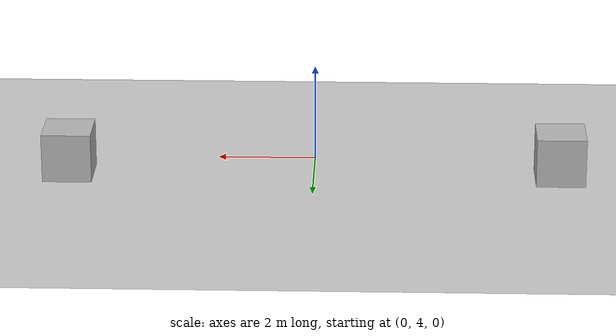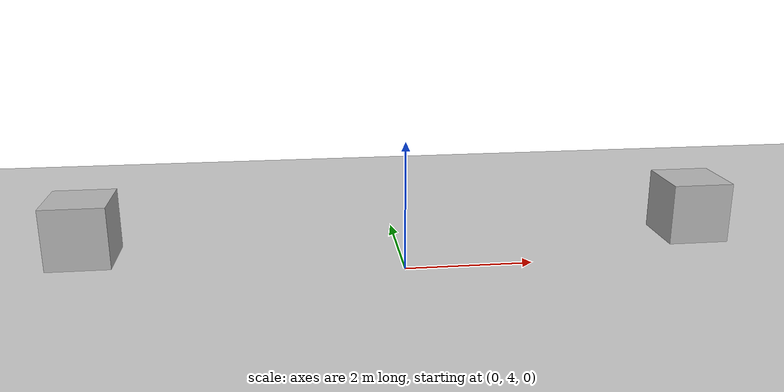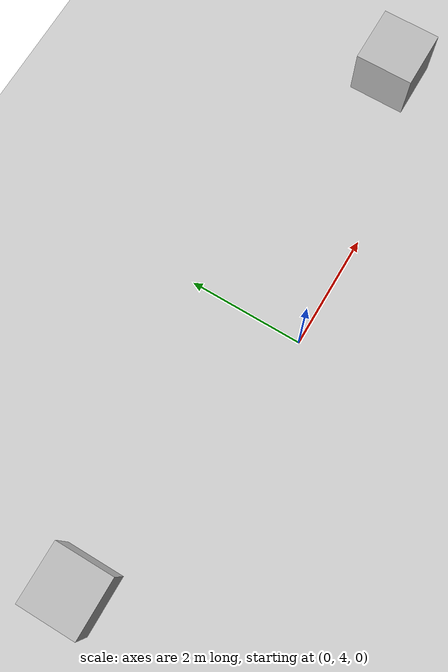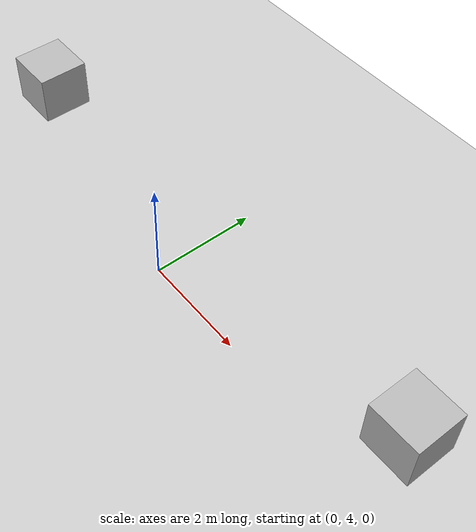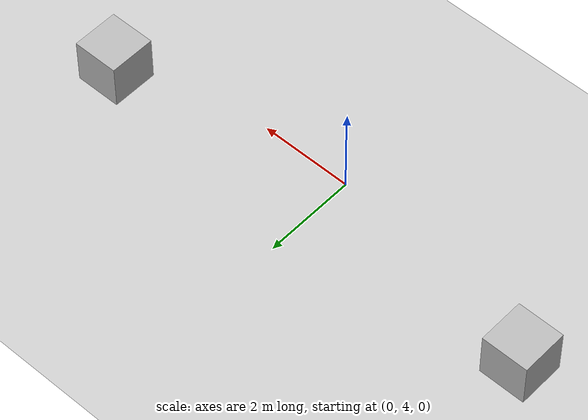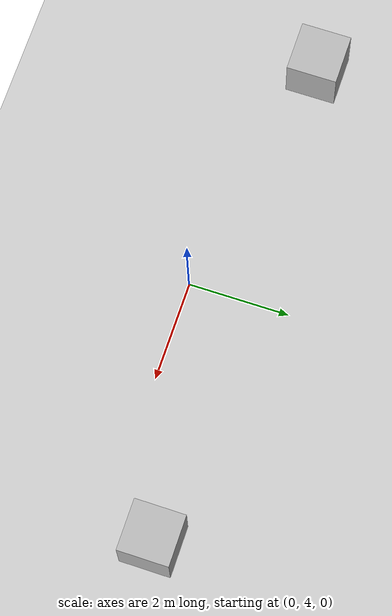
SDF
<?xml version="1.0" ?>
<sdf version="1.6">
  <world name="dynamic_obstacles">
    <include>
      <uri>model://sun</uri>
    </include>
    <include>
      <uri>model://ground_plane</uri>
    </include>

    <model name="box1">
      <static>true</static>
      <pose>5 5 0.5 0 0 0</pose>
      <link name="link">
        <collision name="collision">
          <geometry>
            <box>
              <size>1 1 1</size>
            </box>
          </geometry>
        </collision>
        <visual name="visual">
          <geometry>
            <box>
              <size>1 1 1</size>
            </box>
          </geometry>
        </visual>
      </link>
    </model>

    <model name="animated_box">
      <pose>-5 5 0.5 0 0 0</pose>
      <link name="link">
        <inertial>
          <mass>1.0</mass>
          <inertia>
            <ixx>0.083</ixx>
            <ixy>0.0</ixy>
            <ixz>0.0</ixz>
            <iyy>0.083</iyy>
            <iyz>0.0</iyz>
            <izz>0.083</izz>
          </inertia>
        </inertial>
        <collision name="collision">
          <geometry>
            <box>
              <size>1 1 1</size>
            </box>
          </geometry>
        </collision>
        <visual name="visual">
          <geometry>
            <box>
              <size>1 1 1</size>
            </box>
          </geometry>
        </visual>
      </link>
      <script>
        <loop>true</loop>
        <delay_start>0.0</delay_start>
        <auto_start>true</auto_start>
        <trajectory id="box_trajectory" type="swing">
          <waypoint>
            <time>0.0</time>
            <pose>-5 5 0.5 0 0 0</pose>
          </waypoint>
          <waypoint>
            <time>5.0</time>
            <pose>5 5 0.5 0 0 0</pose>
          </waypoint>
          <waypoint>
            <time>10.0</time>
            <pose>-5 5 0.5 0 0 0</pose>
          </waypoint>
        </trajectory>
      </script>
    </model>

  </world>
</sdf>
